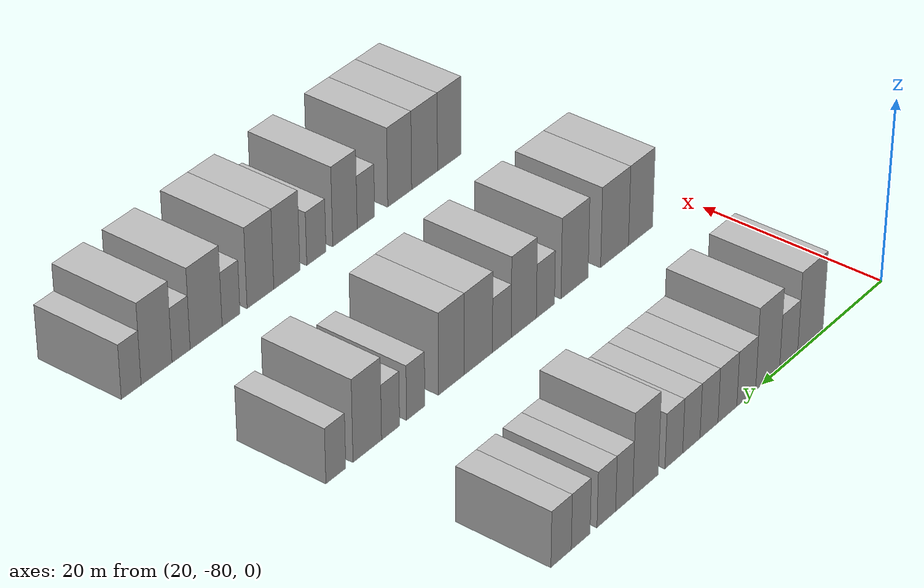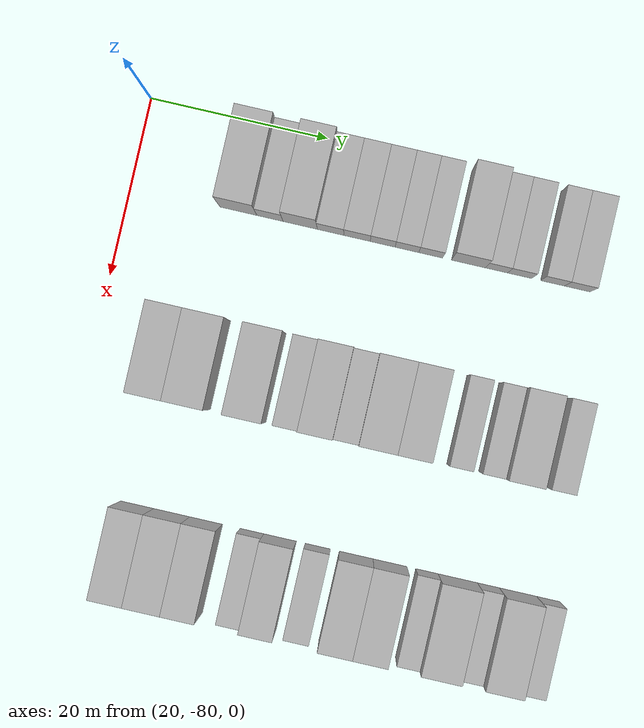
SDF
<sdf version="1.6">
 <world name="default">
  <model name="building_70">
   <static>1</static>
   <pose>25.0000 -67.7949 0 0.000000 0.000000 0.000000</pose>
   <link name="link">
    <pose>0 0 4.50 0 0 0</pose>
    <collision name="collision"><geometry><box><size>10.0000 4.1830 9.0000</size></box></geometry></collision>
    <visual name="visual">
     <cast_shadows>0</cast_shadows>
     <geometry><box><size>10.0000 4.1830 9.0000</size></box></geometry>
     <material>
      <script>
       <uri>model://HANNAS_wall/materials/scripts</uri>
       <uri>model://HANNAS_wall/materials/textures</uri>
       <name>vrc/HANNAS_wall</name>
      </script>
     </material>
    </visual>
   </link>
  </model>
  <model name="building_71">
   <static>1</static>
   <pose>25.0000 -64.2286 0 0.000000 0.000000 0.000000</pose>
   <link name="link">
    <pose>0 0 3.00 0 0 0</pose>
    <collision name="collision"><geometry><box><size>10.0000 2.9495 6.0000</size></box></geometry></collision>
    <visual name="visual">
     <cast_shadows>0</cast_shadows>
     <geometry><box><size>10.0000 2.9495 6.0000</size></box></geometry>
     <material>
      <script>
       <uri>model://HANNAS_wall/materials/scripts</uri>
       <uri>model://HANNAS_wall/materials/textures</uri>
       <name>vrc/HANNAS_wall</name>
      </script>
     </material>
    </visual>
   </link>
  </model>
  <model name="building_72">
   <static>1</static>
   <pose>25.0000 -60.8207 0 0.000000 0.000000 0.000000</pose>
   <link name="link">
    <pose>0 0 4.50 0 0 0</pose>
    <collision name="collision"><geometry><box><size>10.0000 3.8664 9.0000</size></box></geometry></collision>
    <visual name="visual">
     <cast_shadows>0</cast_shadows>
     <geometry><box><size>10.0000 3.8664 9.0000</size></box></geometry>
     <material>
      <script>
       <uri>model://HANNAS_wall/materials/scripts</uri>
       <uri>model://HANNAS_wall/materials/textures</uri>
       <name>vrc/HANNAS_wall</name>
      </script>
     </material>
    </visual>
   </link>
  </model>
  <model name="building_73">
   <static>1</static>
   <pose>25.0000 -57.3881 0 0.000000 0.000000 0.000000</pose>
   <link name="link">
    <pose>0 0 3.00 0 0 0</pose>
    <collision name="collision"><geometry><box><size>10.0000 2.9990 6.0000</size></box></geometry></collision>
    <visual name="visual">
     <cast_shadows>0</cast_shadows>
     <geometry><box><size>10.0000 2.9990 6.0000</size></box></geometry>
     <material>
      <script>
       <uri>model://HANNAS_wall/materials/scripts</uri>
       <uri>model://HANNAS_wall/materials/textures</uri>
       <name>vrc/HANNAS_wall</name>
      </script>
     </material>
    </visual>
   </link>
  </model>
  <model name="building_74">
   <static>1</static>
   <pose>25.0000 -54.4028 0 0.000000 0.000000 0.000000</pose>
   <link name="link">
    <pose>0 0 3.00 0 0 0</pose>
    <collision name="collision"><geometry><box><size>10.0000 2.9715 6.0000</size></box></geometry></collision>
    <visual name="visual">
     <cast_shadows>0</cast_shadows>
     <geometry><box><size>10.0000 2.9715 6.0000</size></box></geometry>
     <material>
      <script>
       <uri>model://HANNAS_wall/materials/scripts</uri>
       <uri>model://HANNAS_wall/materials/textures</uri>
       <name>vrc/HANNAS_wall</name>
      </script>
     </material>
    </visual>
   </link>
  </model>
  <model name="building_75">
   <static>1</static>
   <pose>25.0000 -51.5189 0 0.000000 0.000000 0.000000</pose>
   <link name="link">
    <pose>0 0 3.00 0 0 0</pose>
    <collision name="collision"><geometry><box><size>10.0000 2.7965 6.0000</size></box></geometry></collision>
    <visual name="visual">
     <cast_shadows>0</cast_shadows>
     <geometry><box><size>10.0000 2.7965 6.0000</size></box></geometry>
     <material>
      <script>
       <uri>model://HANNAS_wall/materials/scripts</uri>
       <uri>model://HANNAS_wall/materials/textures</uri>
       <name>vrc/HANNAS_wall</name>
      </script>
     </material>
    </visual>
   </link>
  </model>
  <model name="building_76">
   <static>1</static>
   <pose>25.0000 -48.7850 0 0.000000 0.000000 0.000000</pose>
   <link name="link">
    <pose>0 0 3.00 0 0 0</pose>
    <collision name="collision"><geometry><box><size>10.0000 2.6713 6.0000</size></box></geometry></collision>
    <visual name="visual">
     <cast_shadows>0</cast_shadows>
     <geometry><box><size>10.0000 2.6713 6.0000</size></box></geometry>
     <material>
      <script>
       <uri>model://HANNAS_wall/materials/scripts</uri>
       <uri>model://HANNAS_wall/materials/textures</uri>
       <name>vrc/HANNAS_wall</name>
      </script>
     </material>
    </visual>
   </link>
  </model>
  <model name="building_77">
   <static>1</static>
   <pose>25.0000 -46.0974 0 0.000000 0.000000 0.000000</pose>
   <link name="link">
    <pose>0 0 3.00 0 0 0</pose>
    <collision name="collision"><geometry><box><size>10.0000 2.7039 6.0000</size></box></geometry></collision>
    <visual name="visual">
     <cast_shadows>0</cast_shadows>
     <geometry><box><size>10.0000 2.7039 6.0000</size></box></geometry>
     <material>
      <script>
       <uri>model://HANNAS_wall/materials/scripts</uri>
       <uri>model://HANNAS_wall/materials/textures</uri>
       <name>vrc/HANNAS_wall</name>
      </script>
     </material>
    </visual>
   </link>
  </model>
  <model name="building_78">
   <static>1</static>
   <pose>25.0000 -41.8344 0 0.000000 0.000000 0.000000</pose>
   <link name="link">
    <pose>0 0 4.50 0 0 0</pose>
    <collision name="collision"><geometry><box><size>10.0000 3.8222 9.0000</size></box></geometry></collision>
    <visual name="visual">
     <cast_shadows>0</cast_shadows>
     <geometry><box><size>10.0000 3.8222 9.0000</size></box></geometry>
     <material>
      <script>
       <uri>model://HANNAS_wall/materials/scripts</uri>
       <uri>model://HANNAS_wall/materials/textures</uri>
       <name>vrc/HANNAS_wall</name>
      </script>
     </material>
    </visual>
   </link>
  </model>
  <model name="building_79">
   <static>1</static>
   <pose>25.0000 -38.6605 0 0.000000 0.000000 0.000000</pose>
   <link name="link">
    <pose>0 0 3.00 0 0 0</pose>
    <collision name="collision"><geometry><box><size>10.0000 2.5257 6.0000</size></box></geometry></collision>
    <visual name="visual">
     <cast_shadows>0</cast_shadows>
     <geometry><box><size>10.0000 2.5257 6.0000</size></box></geometry>
     <material>
      <script>
       <uri>model://HANNAS_wall/materials/scripts</uri>
       <uri>model://HANNAS_wall/materials/textures</uri>
       <name>vrc/HANNAS_wall</name>
      </script>
     </material>
    </visual>
   </link>
  </model>
  <model name="building_80">
   <static>1</static>
   <pose>25.0000 -36.0347 0 0.000000 0.000000 0.000000</pose>
   <link name="link">
    <pose>0 0 3.00 0 0 0</pose>
    <collision name="collision"><geometry><box><size>10.0000 2.7259 6.0000</size></box></geometry></collision>
    <visual name="visual">
     <cast_shadows>0</cast_shadows>
     <geometry><box><size>10.0000 2.7259 6.0000</size></box></geometry>
     <material>
      <script>
       <uri>model://HANNAS_wall/materials/scripts</uri>
       <uri>model://HANNAS_wall/materials/textures</uri>
       <name>vrc/HANNAS_wall</name>
      </script>
     </material>
    </visual>
   </link>
  </model>
  <model name="building_81">
   <static>1</static>
   <pose>25.0000 -32.3212 0 0.000000 0.000000 0.000000</pose>
   <link name="link">
    <pose>0 0 3.00 0 0 0</pose>
    <collision name="collision"><geometry><box><size>10.0000 2.7010 6.0000</size></box></geometry></collision>
    <visual name="visual">
     <cast_shadows>0</cast_shadows>
     <geometry><box><size>10.0000 2.7010 6.0000</size></box></geometry>
     <material>
      <script>
       <uri>model://HANNAS_wall/materials/scripts</uri>
       <uri>model://HANNAS_wall/materials/textures</uri>
       <name>vrc/HANNAS_wall</name>
      </script>
     </material>
    </visual>
   </link>
  </model>
  <model name="building_82">
   <static>1</static>
   <pose>25.0000 -29.5241 0 0.000000 0.000000 0.000000</pose>
   <link name="link">
    <pose>0 0 3.00 0 0 0</pose>
    <collision name="collision"><geometry><box><size>10.0000 2.8931 6.0000</size></box></geometry></collision>
    <visual name="visual">
     <cast_shadows>0</cast_shadows>
     <geometry><box><size>10.0000 2.8931 6.0000</size></box></geometry>
     <material>
      <script>
       <uri>model://HANNAS_wall/materials/scripts</uri>
       <uri>model://HANNAS_wall/materials/textures</uri>
       <name>vrc/HANNAS_wall</name>
      </script>
     </material>
    </visual>
   </link>
  </model>
  <model name="building_260">
   <static>1</static>
   <pose>47.0000 -72.4099 0 0.000000 0.000000 0.000000</pose>
   <link name="link">
    <pose>0 0 4.50 0 0 0</pose>
    <collision name="collision"><geometry><box><size>10.0000 3.9610 9.0000</size></box></geometry></collision>
    <visual name="visual">
     <cast_shadows>0</cast_shadows>
     <geometry><box><size>10.0000 3.9610 9.0000</size></box></geometry>
     <material>
      <script>
       <uri>model://HANNAS_wall/materials/scripts</uri>
       <uri>model://HANNAS_wall/materials/textures</uri>
       <name>vrc/HANNAS_wall</name>
      </script>
     </material>
    </visual>
   </link>
  </model>
  <model name="building_261">
   <static>1</static>
   <pose>47.0000 -68.1826 0 0.000000 0.000000 0.000000</pose>
   <link name="link">
    <pose>0 0 4.50 0 0 0</pose>
    <collision name="collision"><geometry><box><size>10.0000 4.4937 9.0000</size></box></geometry></collision>
    <visual name="visual">
     <cast_shadows>0</cast_shadows>
     <geometry><box><size>10.0000 4.4937 9.0000</size></box></geometry>
     <material>
      <script>
       <uri>model://HANNAS_wall/materials/scripts</uri>
       <uri>model://HANNAS_wall/materials/textures</uri>
       <name>vrc/HANNAS_wall</name>
      </script>
     </material>
    </visual>
   </link>
  </model>
  <model name="building_262">
   <static>1</static>
   <pose>47.0000 -61.8004 0 0.000000 0.000000 0.000000</pose>
   <link name="link">
    <pose>0 0 4.50 0 0 0</pose>
    <collision name="collision"><geometry><box><size>10.0000 4.2708 9.0000</size></box></geometry></collision>
    <visual name="visual">
     <cast_shadows>0</cast_shadows>
     <geometry><box><size>10.0000 4.2708 9.0000</size></box></geometry>
     <material>
      <script>
       <uri>model://HANNAS_wall/materials/scripts</uri>
       <uri>model://HANNAS_wall/materials/textures</uri>
       <name>vrc/HANNAS_wall</name>
      </script>
     </material>
    </visual>
   </link>
  </model>
  <model name="building_263">
   <static>1</static>
   <pose>47.0000 -57.2560 0 0.000000 0.000000 0.000000</pose>
   <link name="link">
    <pose>0 0 3.00 0 0 0</pose>
    <collision name="collision"><geometry><box><size>10.0000 2.8179 6.0000</size></box></geometry></collision>
    <visual name="visual">
     <cast_shadows>0</cast_shadows>
     <geometry><box><size>10.0000 2.8179 6.0000</size></box></geometry>
     <material>
      <script>
       <uri>model://HANNAS_wall/materials/scripts</uri>
       <uri>model://HANNAS_wall/materials/textures</uri>
       <name>vrc/HANNAS_wall</name>
      </script>
     </material>
    </visual>
   </link>
  </model>
  <model name="building_264">
   <static>1</static>
   <pose>47.0000 -53.9247 0 0.000000 0.000000 0.000000</pose>
   <link name="link">
    <pose>0 0 4.50 0 0 0</pose>
    <collision name="collision"><geometry><box><size>10.0000 3.8447 9.0000</size></box></geometry></collision>
    <visual name="visual">
     <cast_shadows>0</cast_shadows>
     <geometry><box><size>10.0000 3.8447 9.0000</size></box></geometry>
     <material>
      <script>
       <uri>model://HANNAS_wall/materials/scripts</uri>
       <uri>model://HANNAS_wall/materials/textures</uri>
       <name>vrc/HANNAS_wall</name>
      </script>
     </material>
    </visual>
   </link>
  </model>
  <model name="building_265">
   <static>1</static>
   <pose>47.0000 -50.5936 0 0.000000 0.000000 0.000000</pose>
   <link name="link">
    <pose>0 0 3.00 0 0 0</pose>
    <collision name="collision"><geometry><box><size>10.0000 2.8174 6.0000</size></box></geometry></collision>
    <visual name="visual">
     <cast_shadows>0</cast_shadows>
     <geometry><box><size>10.0000 2.8174 6.0000</size></box></geometry>
     <material>
      <script>
       <uri>model://HANNAS_wall/materials/scripts</uri>
       <uri>model://HANNAS_wall/materials/textures</uri>
       <name>vrc/HANNAS_wall</name>
      </script>
     </material>
    </visual>
   </link>
  </model>
  <model name="building_266">
   <static>1</static>
   <pose>47.0000 -47.0925 0 0.000000 0.000000 0.000000</pose>
   <link name="link">
    <pose>0 0 4.50 0 0 0</pose>
    <collision name="collision"><geometry><box><size>10.0000 4.1849 9.0000</size></box></geometry></collision>
    <visual name="visual">
     <cast_shadows>0</cast_shadows>
     <geometry><box><size>10.0000 4.1849 9.0000</size></box></geometry>
     <material>
      <script>
       <uri>model://HANNAS_wall/materials/scripts</uri>
       <uri>model://HANNAS_wall/materials/textures</uri>
       <name>vrc/HANNAS_wall</name>
      </script>
     </material>
    </visual>
   </link>
  </model>
  <model name="building_267">
   <static>1</static>
   <pose>47.0000 -43.1196 0 0.000000 0.000000 0.000000</pose>
   <link name="link">
    <pose>0 0 4.50 0 0 0</pose>
    <collision name="collision"><geometry><box><size>10.0000 3.7610 9.0000</size></box></geometry></collision>
    <visual name="visual">
     <cast_shadows>0</cast_shadows>
     <geometry><box><size>10.0000 3.7610 9.0000</size></box></geometry>
     <material>
      <script>
       <uri>model://HANNAS_wall/materials/scripts</uri>
       <uri>model://HANNAS_wall/materials/textures</uri>
       <name>vrc/HANNAS_wall</name>
      </script>
     </material>
    </visual>
   </link>
  </model>
  <model name="building_268">
   <static>1</static>
   <pose>47.0000 -37.9317 0 0.000000 0.000000 0.000000</pose>
   <link name="link">
    <pose>0 0 3.00 0 0 0</pose>
    <collision name="collision"><geometry><box><size>10.0000 2.6148 6.0000</size></box></geometry></collision>
    <visual name="visual">
     <cast_shadows>0</cast_shadows>
     <geometry><box><size>10.0000 2.6148 6.0000</size></box></geometry>
     <material>
      <script>
       <uri>model://HANNAS_wall/materials/scripts</uri>
       <uri>model://HANNAS_wall/materials/textures</uri>
       <name>vrc/HANNAS_wall</name>
      </script>
     </material>
    </visual>
   </link>
  </model>
  <model name="building_269">
   <static>1</static>
   <pose>47.0000 -34.3535 0 0.000000 0.000000 0.000000</pose>
   <link name="link">
    <pose>0 0 3.00 0 0 0</pose>
    <collision name="collision"><geometry><box><size>10.0000 2.5415 6.0000</size></box></geometry></collision>
    <visual name="visual">
     <cast_shadows>0</cast_shadows>
     <geometry><box><size>10.0000 2.5415 6.0000</size></box></geometry>
     <material>
      <script>
       <uri>model://HANNAS_wall/materials/scripts</uri>
       <uri>model://HANNAS_wall/materials/textures</uri>
       <name>vrc/HANNAS_wall</name>
      </script>
     </material>
    </visual>
   </link>
  </model>
  <model name="building_270">
   <static>1</static>
   <pose>47.0000 -31.0920 0 0.000000 0.000000 0.000000</pose>
   <link name="link">
    <pose>0 0 4.50 0 0 0</pose>
    <collision name="collision"><geometry><box><size>10.0000 3.9814 9.0000</size></box></geometry></collision>
    <visual name="visual">
     <cast_shadows>0</cast_shadows>
     <geometry><box><size>10.0000 3.9814 9.0000</size></box></geometry>
     <material>
      <script>
       <uri>model://HANNAS_wall/materials/scripts</uri>
       <uri>model://HANNAS_wall/materials/textures</uri>
       <name>vrc/HANNAS_wall</name>
      </script>
     </material>
    </visual>
   </link>
  </model>
  <model name="building_271">
   <static>1</static>
   <pose>47.0000 -26.7412 0 0.000000 0.000000 0.000000</pose>
   <link name="link">
    <pose>0 0 3.00 0 0 0</pose>
    <collision name="collision"><geometry><box><size>10.0000 2.7202 6.0000</size></box></geometry></collision>
    <visual name="visual">
     <cast_shadows>0</cast_shadows>
     <geometry><box><size>10.0000 2.7202 6.0000</size></box></geometry>
     <material>
      <script>
       <uri>model://HANNAS_wall/materials/scripts</uri>
       <uri>model://HANNAS_wall/materials/textures</uri>
       <name>vrc/HANNAS_wall</name>
      </script>
     </material>
    </visual>
   </link>
  </model>
  <model name="building_445">
   <static>1</static>
   <pose>69.0000 -71.4307 0 0.000000 0.000000 0.000000</pose>
   <link name="link">
    <pose>0 0 4.50 0 0 0</pose>
    <collision name="collision"><geometry><box><size>10.0000 3.7307 9.0000</size></box></geometry></collision>
    <visual name="visual">
     <cast_shadows>0</cast_shadows>
     <geometry><box><size>10.0000 3.7307 9.0000</size></box></geometry>
     <material>
      <script>
       <uri>model://HANNAS_wall/materials/scripts</uri>
       <uri>model://HANNAS_wall/materials/textures</uri>
       <name>vrc/HANNAS_wall</name>
      </script>
     </material>
    </visual>
   </link>
  </model>
  <model name="building_446">
   <static>1</static>
   <pose>69.0000 -67.5292 0 0.000000 0.000000 0.000000</pose>
   <link name="link">
    <pose>0 0 4.50 0 0 0</pose>
    <collision name="collision"><geometry><box><size>10.0000 4.0723 9.0000</size></box></geometry></collision>
    <visual name="visual">
     <cast_shadows>0</cast_shadows>
     <geometry><box><size>10.0000 4.0723 9.0000</size></box></geometry>
     <material>
      <script>
       <uri>model://HANNAS_wall/materials/scripts</uri>
       <uri>model://HANNAS_wall/materials/textures</uri>
       <name>vrc/HANNAS_wall</name>
      </script>
     </material>
    </visual>
   </link>
  </model>
  <model name="building_447">
   <static>1</static>
   <pose>69.0000 -63.6410 0 0.000000 0.000000 0.000000</pose>
   <link name="link">
    <pose>0 0 4.50 0 0 0</pose>
    <collision name="collision"><geometry><box><size>10.0000 3.7041 9.0000</size></box></geometry></collision>
    <visual name="visual">
     <cast_shadows>0</cast_shadows>
     <geometry><box><size>10.0000 3.7041 9.0000</size></box></geometry>
     <material>
      <script>
       <uri>model://HANNAS_wall/materials/scripts</uri>
       <uri>model://HANNAS_wall/materials/textures</uri>
       <name>vrc/HANNAS_wall</name>
      </script>
     </material>
    </visual>
   </link>
  </model>
  <model name="building_448">
   <static>1</static>
   <pose>69.0000 -58.4604 0 0.000000 0.000000 0.000000</pose>
   <link name="link">
    <pose>0 0 3.00 0 0 0</pose>
    <collision name="collision"><geometry><box><size>10.0000 2.6571 6.0000</size></box></geometry></collision>
    <visual name="visual">
     <cast_shadows>0</cast_shadows>
     <geometry><box><size>10.0000 2.6571 6.0000</size></box></geometry>
     <material>
      <script>
       <uri>model://HANNAS_wall/materials/scripts</uri>
       <uri>model://HANNAS_wall/materials/textures</uri>
       <name>vrc/HANNAS_wall</name>
      </script>
     </material>
    </visual>
   </link>
  </model>
  <model name="building_449">
   <static>1</static>
   <pose>69.0000 -55.2918 0 0.000000 0.000000 0.000000</pose>
   <link name="link">
    <pose>0 0 4.50 0 0 0</pose>
    <collision name="collision"><geometry><box><size>10.0000 3.6801 9.0000</size></box></geometry></collision>
    <visual name="visual">
     <cast_shadows>0</cast_shadows>
     <geometry><box><size>10.0000 3.6801 9.0000</size></box></geometry>
     <material>
      <script>
       <uri>model://HANNAS_wall/materials/scripts</uri>
       <uri>model://HANNAS_wall/materials/textures</uri>
       <name>vrc/HANNAS_wall</name>
      </script>
     </material>
    </visual>
   </link>
  </model>
  <model name="building_450">
   <static>1</static>
   <pose>69.0000 -51.0326 0 0.000000 0.000000 0.000000</pose>
   <link name="link">
    <pose>0 0 3.00 0 0 0</pose>
    <collision name="collision"><geometry><box><size>10.0000 2.8382 6.0000</size></box></geometry></collision>
    <visual name="visual">
     <cast_shadows>0</cast_shadows>
     <geometry><box><size>10.0000 2.8382 6.0000</size></box></geometry>
     <material>
      <script>
       <uri>model://HANNAS_wall/materials/scripts</uri>
       <uri>model://HANNAS_wall/materials/textures</uri>
       <name>vrc/HANNAS_wall</name>
      </script>
     </material>
    </visual>
   </link>
  </model>
  <model name="building_451">
   <static>1</static>
   <pose>69.0000 -46.7126 0 0.000000 0.000000 0.000000</pose>
   <link name="link">
    <pose>0 0 4.50 0 0 0</pose>
    <collision name="collision"><geometry><box><size>10.0000 3.8019 9.0000</size></box></geometry></collision>
    <visual name="visual">
     <cast_shadows>0</cast_shadows>
     <geometry><box><size>10.0000 3.8019 9.0000</size></box></geometry>
     <material>
      <script>
       <uri>model://HANNAS_wall/materials/scripts</uri>
       <uri>model://HANNAS_wall/materials/textures</uri>
       <name>vrc/HANNAS_wall</name>
      </script>
     </material>
    </visual>
   </link>
  </model>
  <model name="building_452">
   <static>1</static>
   <pose>69.0000 -42.8964 0 0.000000 0.000000 0.000000</pose>
   <link name="link">
    <pose>0 0 4.50 0 0 0</pose>
    <collision name="collision"><geometry><box><size>10.0000 3.8305 9.0000</size></box></geometry></collision>
    <visual name="visual">
     <cast_shadows>0</cast_shadows>
     <geometry><box><size>10.0000 3.8305 9.0000</size></box></geometry>
     <material>
      <script>
       <uri>model://HANNAS_wall/materials/scripts</uri>
       <uri>model://HANNAS_wall/materials/textures</uri>
       <name>vrc/HANNAS_wall</name>
      </script>
     </material>
    </visual>
   </link>
  </model>
  <model name="building_453">
   <static>1</static>
   <pose>69.0000 -38.7197 0 0.000000 0.000000 0.000000</pose>
   <link name="link">
    <pose>0 0 3.00 0 0 0</pose>
    <collision name="collision"><geometry><box><size>10.0000 2.5229 6.0000</size></box></geometry></collision>
    <visual name="visual">
     <cast_shadows>0</cast_shadows>
     <geometry><box><size>10.0000 2.5229 6.0000</size></box></geometry>
     <material>
      <script>
       <uri>model://HANNAS_wall/materials/scripts</uri>
       <uri>model://HANNAS_wall/materials/textures</uri>
       <name>vrc/HANNAS_wall</name>
      </script>
     </material>
    </visual>
   </link>
  </model>
  <model name="building_454">
   <static>1</static>
   <pose>69.0000 -35.2367 0 0.000000 0.000000 0.000000</pose>
   <link name="link">
    <pose>0 0 4.50 0 0 0</pose>
    <collision name="collision"><geometry><box><size>10.0000 4.4431 9.0000</size></box></geometry></collision>
    <visual name="visual">
     <cast_shadows>0</cast_shadows>
     <geometry><box><size>10.0000 4.4431 9.0000</size></box></geometry>
     <material>
      <script>
       <uri>model://HANNAS_wall/materials/scripts</uri>
       <uri>model://HANNAS_wall/materials/textures</uri>
       <name>vrc/HANNAS_wall</name>
      </script>
     </material>
    </visual>
   </link>
  </model>
  <model name="building_455">
   <static>1</static>
   <pose>69.0000 -31.7747 0 0.000000 0.000000 0.000000</pose>
   <link name="link">
    <pose>0 0 3.00 0 0 0</pose>
    <collision name="collision"><geometry><box><size>10.0000 2.4809 6.0000</size></box></geometry></collision>
    <visual name="visual">
     <cast_shadows>0</cast_shadows>
     <geometry><box><size>10.0000 2.4809 6.0000</size></box></geometry>
     <material>
      <script>
       <uri>model://HANNAS_wall/materials/scripts</uri>
       <uri>model://HANNAS_wall/materials/textures</uri>
       <name>vrc/HANNAS_wall</name>
      </script>
     </material>
    </visual>
   </link>
  </model>
  <model name="building_456">
   <static>1</static>
   <pose>69.0000 -28.4365 0 0.000000 0.000000 0.000000</pose>
   <link name="link">
    <pose>0 0 4.50 0 0 0</pose>
    <collision name="collision"><geometry><box><size>10.0000 4.1955 9.0000</size></box></geometry></collision>
    <visual name="visual">
     <cast_shadows>0</cast_shadows>
     <geometry><box><size>10.0000 4.1955 9.0000</size></box></geometry>
     <material>
      <script>
       <uri>model://HANNAS_wall/materials/scripts</uri>
       <uri>model://HANNAS_wall/materials/textures</uri>
       <name>vrc/HANNAS_wall</name>
      </script>
     </material>
    </visual>
   </link>
  </model>
  <model name="building_457">
   <static>1</static>
   <pose>69.0000 -25.0160 0 0.000000 0.000000 0.000000</pose>
   <link name="link">
    <pose>0 0 3.00 0 0 0</pose>
    <collision name="collision"><geometry><box><size>10.0000 2.6454 6.0000</size></box></geometry></collision>
    <visual name="visual">
     <cast_shadows>0</cast_shadows>
     <geometry><box><size>10.0000 2.6454 6.0000</size></box></geometry>
     <material>
      <script>
       <uri>model://HANNAS_wall/materials/scripts</uri>
       <uri>model://HANNAS_wall/materials/textures</uri>
       <name>vrc/HANNAS_wall</name>
      </script>
     </material>
    </visual>
   </link>
  </model>
 </world>
</sdf>
